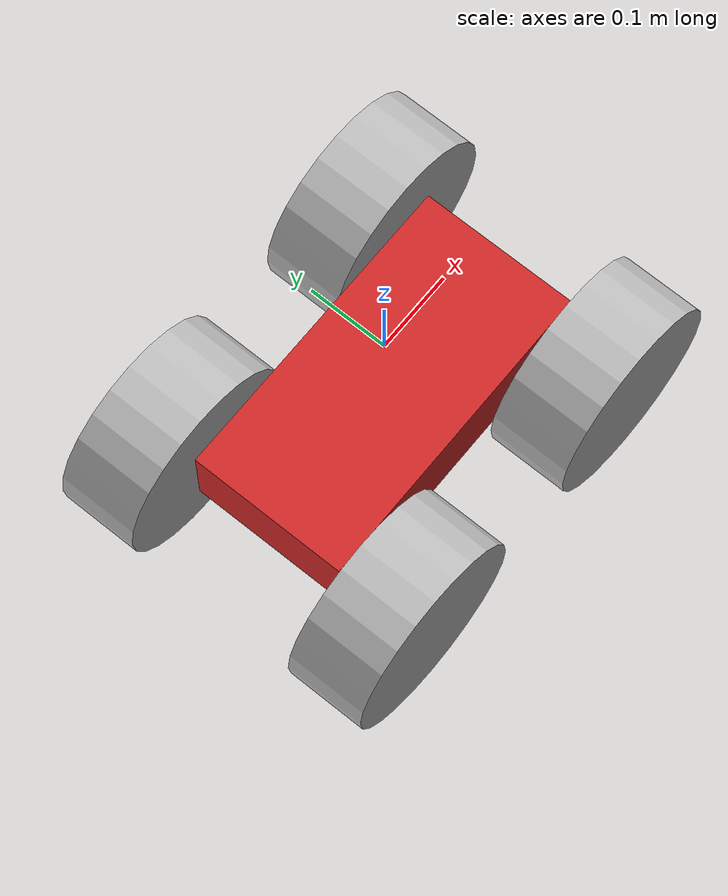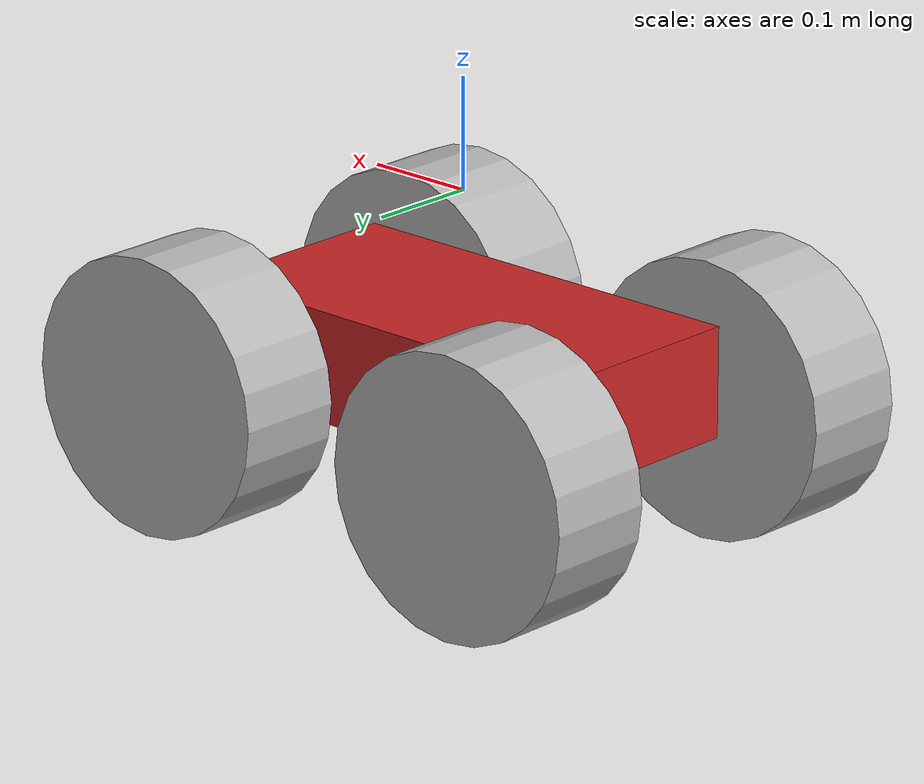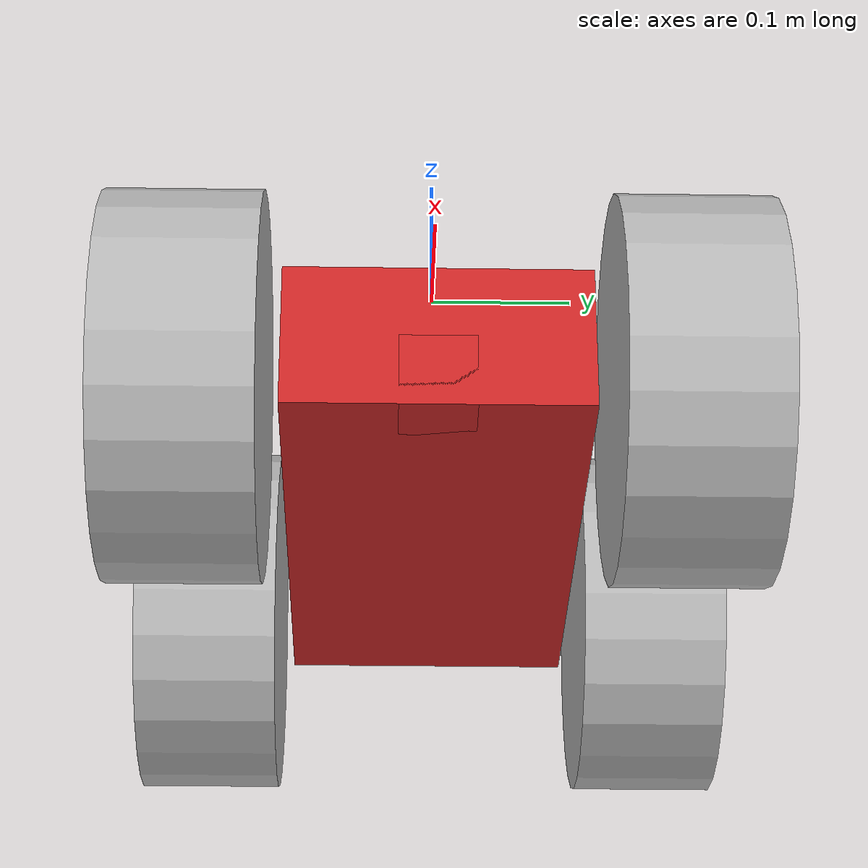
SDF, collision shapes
<sdf version='1.7'>
  <model name='iBot'>
    <link name='robot_footprint'>
      <inertial>
        <pose>0.001151 0 -0.150164 0 -0 0</pose>
        <mass>15.2</mass>
        <inertia>
          <ixx>0.0626454</ixx>
          <ixy>4.24915e-17</ixy>
          <ixz>0.000434622</ixz>
          <iyy>0.215688</iyy>
          <iyz>1.50945e-32</iyz>
          <izz>0.253126</izz>
        </inertia>
      </inertial>
      <collision name='robot_footprint_fixed_joint_lump__collision_collision'>
        <pose>0 0 -0.15 0 -0 0</pose>
        <geometry>
          <box>
            <size>0.4 0.2 0.1</size>
          </box>
        </geometry>
      </collision>
      <collision name='robot_footprint_fixed_joint_lump__camera_colision_collision_1'>
        <pose>0.175 0 -0.175 0 1.5708 0</pose>
        <geometry>
          <box>
            <size>0.05 0.05 0.05</size>
          </box>
        </geometry>
      </collision>
      <collision name='robot_footprint_fixed_joint_lump__imu_colision_collision_2'>
        <pose>0 0 -0.15 0 -0 0</pose>
        <geometry>
          <box>
            <size>0.05 0.05 0.05</size>
          </box>
        </geometry>
      </collision>
      <visual name='robot_footprint_fixed_joint_lump__chassis_visual_visual'>
        <pose>0 0 -0.15 1.5708 -0 0</pose>
        <geometry>
          <mesh>
            <scale>1 1 1</scale>
            <uri>model://iBot/meshes/chassis3.obj</uri>
          </mesh>
        </geometry>
      </visual>
      <visual name='robot_footprint_fixed_joint_lump__camera_visual_visual_1'>
        <pose>0.175 0 -0.175 1.5707 0 1.5708</pose>
        <geometry>
          <mesh>
            <scale>1 1 1</scale>
            <uri>model://iBot/meshes/camera.obj</uri>
          </mesh>
        </geometry>
      </visual>
      <visual name='robot_footprint_fixed_joint_lump__imu_visual_visual_2'>
        <pose>0 0 -0.15 0 -0 0</pose>
        <geometry>
          <box>
            <size>0.05 0.05 0.05</size>
          </box>
        </geometry>
        <material>
          <script>
            <name>Gazebo/Red</name>
            <uri>file://media/materials/scripts/gazebo.material</uri>
          </script>
        </material>
      </visual>
      <velocity_decay/>
      <sensor name='camera_sensor' type='camera'>
        <update_rate>30</update_rate>
        <always_on>1</always_on>
        <camera name='camera'>
          <horizontal_fov>1.39626</horizontal_fov>
          <image>
            <width>800</width>
            <height>800</height>
            <format>R8G8B8</format>
          </image>
          <clip>
            <near>0.02</near>
            <far>300</far>
          </clip>
          <distortion>
            <k1>0</k1>
            <k2>0</k2>
            <k3>0</k3>
            <p1>0</p1>
            <p2>0</p2>
            <center>0.5 0.5</center>
          </distortion>
        </camera>
        <plugin name='camera_controller' filename='libgazebo_ros_camera.so'>
          <ros>
            <namespace>/iBot</namespace>
            <remapping>camera/image_raw:=/iBot/camera/image</remapping>
            <remapping>camera/camera_info:=/iBot/camera/image/camera_info</remapping>
          </ros>
          <camera_name>camera</camera_name>
          <frame_name>camera</frame_name>
          <hack_baseline>0.07</hack_baseline>
        </plugin>
        <pose>0.175 0 -0.175 3.14159 1.57079 3.14159</pose>
      </sensor>
      <velocity_decay/>
      <sensor name='imu_sensor' type='imu'>
        <plugin name='imu' filename='libgazebo_ros_imu_sensor.so'>
          <ros>
            <namespace>/iBot</namespace>
            <remapping>~/out:=imu</remapping>
          </ros>
          <initial_orientation_as_reference>0</initial_orientation_as_reference>
        </plugin>
        <always_on>1</always_on>
        <update_rate>100</update_rate>
        <visualize>1</visualize>
        <imu>
          <angular_velocity>
            <x>
              <noise type='gaussian'>
                <mean>0</mean>
                <stddev>0.0002</stddev>
                <bias_mean>7.5e-06</bias_mean>
                <bias_stddev>8e-07</bias_stddev>
              </noise>
            </x>
            <y>
              <noise type='gaussian'>
                <mean>0</mean>
                <stddev>0.0002</stddev>
                <bias_mean>7.5e-06</bias_mean>
                <bias_stddev>8e-07</bias_stddev>
              </noise>
            </y>
            <z>
              <noise type='gaussian'>
                <mean>0</mean>
                <stddev>0.0002</stddev>
                <bias_mean>7.5e-06</bias_mean>
                <bias_stddev>8e-07</bias_stddev>
              </noise>
            </z>
          </angular_velocity>
          <linear_acceleration>
            <x>
              <noise type='gaussian'>
                <mean>0</mean>
                <stddev>0.017</stddev>
                <bias_mean>0.1</bias_mean>
                <bias_stddev>0.001</bias_stddev>
              </noise>
            </x>
            <y>
              <noise type='gaussian'>
                <mean>0</mean>
                <stddev>0.017</stddev>
                <bias_mean>0.1</bias_mean>
                <bias_stddev>0.001</bias_stddev>
              </noise>
            </y>
            <z>
              <noise type='gaussian'>
                <mean>0</mean>
                <stddev>0.017</stddev>
                <bias_mean>0.1</bias_mean>
                <bias_stddev>0.001</bias_stddev>
              </noise>
            </z>
          </linear_acceleration>
        </imu>
        <pose>0 0 -0.15 0 -0 0</pose>
      </sensor>
      <gravity>1</gravity>
      <velocity_decay/>
    </link>
    <joint name='back_left_wheel_joint' type='revolute'>
      <pose relative_to='robot_footprint'>-0.175 0.16 -0.175 0 -0 0</pose>
      <parent>robot_footprint</parent>
      <child>back_left_wheel_link</child>
      <axis>
        <xyz>0 1 0</xyz>
        <limit>
          <lower>-1e+16</lower>
          <upper>1e+16</upper>
          <effort>1000</effort>
          <velocity>1000</velocity>
        </limit>
        <dynamics>
          <damping>1</damping>
          <friction>1</friction>
          <spring_reference>0</spring_reference>
          <spring_stiffness>0</spring_stiffness>
        </dynamics>
      </axis>
    </joint>
    <link name='back_left_wheel_link'>
      <pose relative_to='back_left_wheel_joint'>0 0 0 0 -0 0</pose>
      <inertial>
        <pose>0 0 0 1.5708 -0 0</pose>
        <mass>5</mass>
        <inertia>
          <ixx>0.0236979</ixx>
          <ixy>0</ixy>
          <ixz>0</ixz>
          <iyy>0.0236979</iyy>
          <iyz>0</iyz>
          <izz>0.0390625</izz>
        </inertia>
      </inertial>
      <collision name='back_left_wheel_link_collision'>
        <pose>0 0 0 1.5708 -0 0</pose>
        <geometry>
          <cylinder>
            <length>0.1</length>
            <radius>0.125</radius>
          </cylinder>
        </geometry>
      </collision>
      <visual name='back_left_wheel_link_visual'>
        <pose>0 0 0 1.5708 -0 0</pose>
        <geometry>
          <mesh>
            <scale>1 1 1</scale>
            <uri>model://iBot/meshes/wheel3.obj</uri>
          </mesh>
        </geometry>
      </visual>
    </link>
    <joint name='back_right_wheel_joint' type='revolute'>
      <pose relative_to='robot_footprint'>-0.175 -0.16 -0.175 0 -0 0</pose>
      <parent>robot_footprint</parent>
      <child>back_right_wheel_link</child>
      <axis>
        <xyz>0 1 0</xyz>
        <limit>
          <lower>-1e+16</lower>
          <upper>1e+16</upper>
          <effort>1000</effort>
          <velocity>1000</velocity>
        </limit>
        <dynamics>
          <damping>1</damping>
          <friction>1</friction>
          <spring_reference>0</spring_reference>
          <spring_stiffness>0</spring_stiffness>
        </dynamics>
      </axis>
    </joint>
    <link name='back_right_wheel_link'>
      <pose relative_to='back_right_wheel_joint'>0 0 0 0 -0 0</pose>
      <inertial>
        <pose>0 0 0 1.5708 -0 0</pose>
        <mass>5</mass>
        <inertia>
          <ixx>0.0236979</ixx>
          <ixy>0</ixy>
          <ixz>0</ixz>
          <iyy>0.0236979</iyy>
          <iyz>0</iyz>
          <izz>0.0390625</izz>
        </inertia>
      </inertial>
      <collision name='back_right_wheel_link_collision'>
        <pose>0 0 0 1.5708 -0 0</pose>
        <geometry>
          <cylinder>
            <length>0.1</length>
            <radius>0.125</radius>
          </cylinder>
        </geometry>
      </collision>
      <visual name='back_right_wheel_link_visual'>
        <pose>0 0 0 1.5708 -0 0</pose>
        <geometry>
          <mesh>
            <scale>1 1 1</scale>
            <uri>model://iBot/meshes/wheel3.obj</uri>
          </mesh>
        </geometry>
      </visual>
    </link>
    <joint name='front_left_wheel_joint' type='revolute'>
      <pose relative_to='robot_footprint'>0.175 0.16 -0.175 0 -0 0</pose>
      <parent>robot_footprint</parent>
      <child>front_left_wheel_link</child>
      <axis>
        <xyz>0 1 0</xyz>
        <limit>
          <lower>-1e+16</lower>
          <upper>1e+16</upper>
          <effort>1000</effort>
          <velocity>1000</velocity>
        </limit>
        <dynamics>
          <damping>1</damping>
          <friction>1</friction>
          <spring_reference>0</spring_reference>
          <spring_stiffness>0</spring_stiffness>
        </dynamics>
      </axis>
    </joint>
    <link name='front_left_wheel_link'>
      <pose relative_to='front_left_wheel_joint'>0 0 0 0 -0 0</pose>
      <inertial>
        <pose>0 0 0 1.5708 -0 0</pose>
        <mass>5</mass>
        <inertia>
          <ixx>0.0236979</ixx>
          <ixy>0</ixy>
          <ixz>0</ixz>
          <iyy>0.0236979</iyy>
          <iyz>0</iyz>
          <izz>0.0390625</izz>
        </inertia>
      </inertial>
      <collision name='front_left_wheel_link_collision'>
        <pose>0 0 0 1.5708 -0 0</pose>
        <geometry>
          <cylinder>
            <length>0.1</length>
            <radius>0.125</radius>
          </cylinder>
        </geometry>
      </collision>
      <visual name='front_left_wheel_link_visual'>
        <pose>0 0 0 1.5708 -0 0</pose>
        <geometry>
          <mesh>
            <scale>1 1 1</scale>
            <uri>model://iBot/meshes/wheel3.obj</uri>
          </mesh>
        </geometry>
      </visual>
    </link>
    <joint name='front_right_wheel_joint' type='revolute'>
      <pose relative_to='robot_footprint'>0.175 -0.16 -0.175 0 -0 0</pose>
      <parent>robot_footprint</parent>
      <child>front_right_wheel_link</child>
      <axis>
        <xyz>0 1 0</xyz>
        <limit>
          <lower>-1e+16</lower>
          <upper>1e+16</upper>
          <effort>1000</effort>
          <velocity>1000</velocity>
        </limit>
        <dynamics>
          <damping>1</damping>
          <friction>1</friction>
          <spring_reference>0</spring_reference>
          <spring_stiffness>0</spring_stiffness>
        </dynamics>
      </axis>
    </joint>
    <link name='front_right_wheel_link'>
      <pose relative_to='front_right_wheel_joint'>0 0 0 0 -0 0</pose>
      <inertial>
        <pose>0 0 0 1.5708 -0 0</pose>
        <mass>5</mass>
        <inertia>
          <ixx>0.0236979</ixx>
          <ixy>0</ixy>
          <ixz>0</ixz>
          <iyy>0.0236979</iyy>
          <iyz>0</iyz>
          <izz>0.0390625</izz>
        </inertia>
      </inertial>
      <collision name='front_right_wheel_link_collision'>
        <pose>0 0 0 1.5708 -0 0</pose>
        <geometry>
          <cylinder>
            <length>0.1</length>
            <radius>0.125</radius>
          </cylinder>
        </geometry>
      </collision>
      <visual name='front_right_wheel_link_visual'>
        <pose>0 0 0 1.5708 -0 0</pose>
        <geometry>
          <mesh>
            <scale>1 1 1</scale>
            <uri>model://iBot/meshes/wheel3.obj</uri>
          </mesh>
        </geometry>
      </visual>
    </link>
    <plugin name='differential_drive_controller' filename='libgazebo_ros_diff_drive.so'>
      <ros>
        <namespace>iBot</namespace>
        <remapping>/cmd_vel:=cmd_vel</remapping>
        <remapping>/odom:=odom</remapping>
      </ros>
      <update_rate>100.0</update_rate>
      <num_wheel_pairs>2</num_wheel_pairs>
      <odometry_frame>odom</odometry_frame>
      <left_joint>front_left_wheel_joint</left_joint>
      <left_joint>back_left_wheel_joint</left_joint>
      <wheel_separation>0.32</wheel_separation>
      <wheel_diameter>0.25</wheel_diameter>
      <right_joint>front_right_wheel_joint</right_joint>
      <right_joint>back_right_wheel_joint</right_joint>
      <wheel_separation>0.32</wheel_separation>
      <wheel_diameter>0.25</wheel_diameter>
      <max_wheel_torque>20</max_wheel_torque>
      <max_wheel_acceleration>1.0</max_wheel_acceleration>
      <publish_odom>1</publish_odom>
      <publish_odom_tf>0</publish_odom_tf>
      <publish_wheel_tf>0</publish_wheel_tf>
      <odometry_frame>odom</odometry_frame>
      <robot_base_frame>robot_footprint</robot_base_frame>
      <odometry_source>world</odometry_source>
    </plugin>
    <plugin name='joint_state_publisher' filename='libgazebo_ros_joint_state_publisher.so'>
      <ros>
        <namespace>iBot</namespace>
        <remapping>~/out:=joint_states</remapping>
      </ros>
      <update_rate>30</update_rate>
      <joint_name>front_left_wheel_joint</joint_name>
      <joint_name>front_right_wheel_joint</joint_name>
      <joint_name>back_left_wheel_joint</joint_name>
      <joint_name>back_right_wheel_joint</joint_name>
    </plugin>
    <static>0</static>
    <plugin name='gazebo_ros_force' filename='libgazebo_ros_force.so'>
      <ros>
        <namespace>iBot</namespace>
        <remapping>/gazebo_ros_force:=wrench</remapping>
      </ros>
      <update_rate>100</update_rate>
      <always_on>1</always_on>
      <link_name>robot_footprint</link_name>
      <force_frame>link</force_frame>
    </plugin>
  </model>
</sdf>
